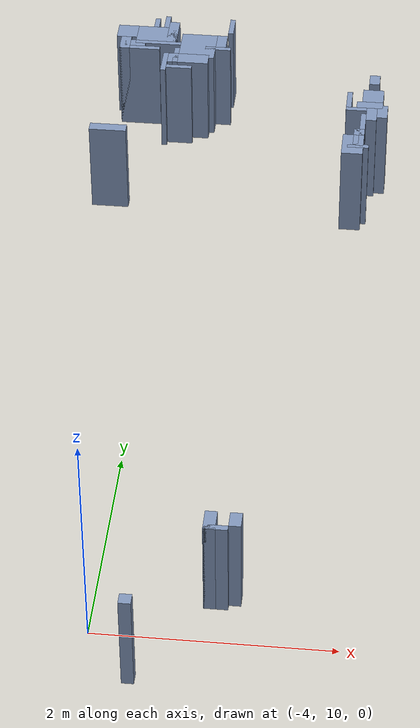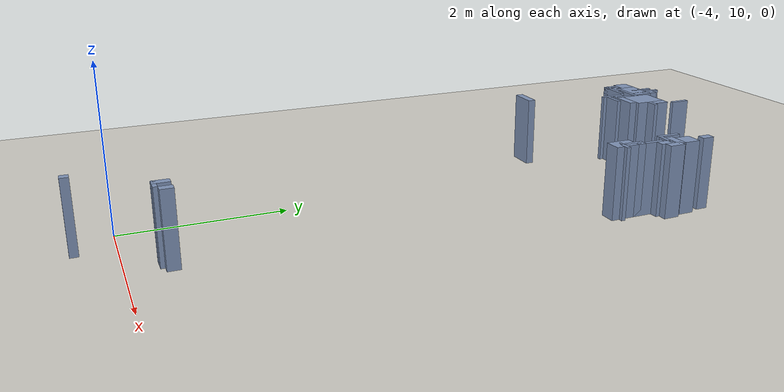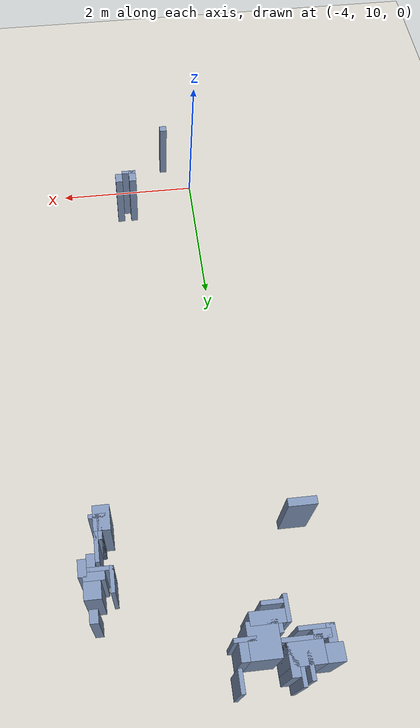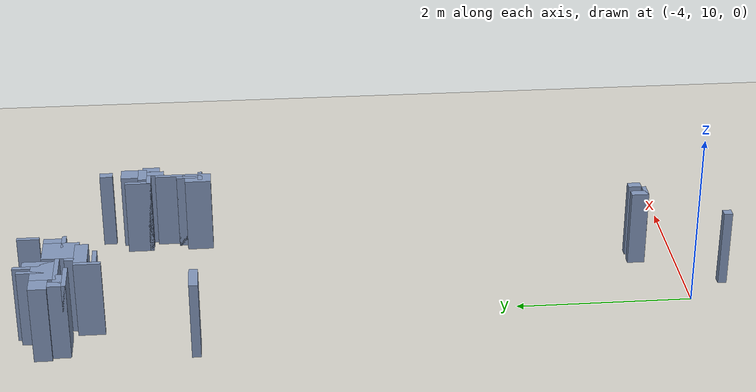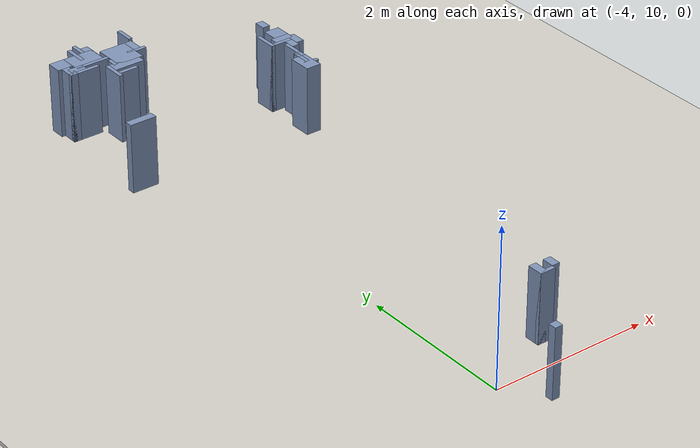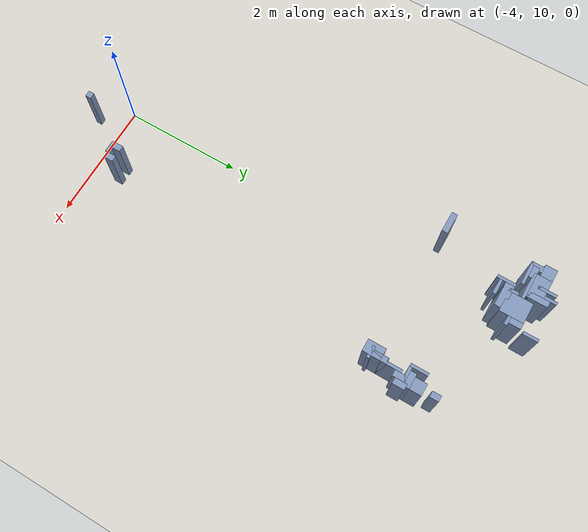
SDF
<sdf version="1.8">
 <world name="capture_fresh">
  <model name="ground_plane">
   <static>true</static>
   <link name="link">
    <collision name="collision">
     <geometry><plane><normal>0 0 1</normal><size>80 80</size></plane></geometry>
    </collision>
    <visual name="visual">
     <geometry><plane><normal>0 0 1</normal><size>80 80</size></plane></geometry>
     <material><ambient>0.40 0.40 0.42 1</ambient><diffuse>0.48 0.48 0.51 1</diffuse></material>
    </visual>
   </link>
  </model>
  <model name="floor_slab">
   <static>true</static>
   <pose>0.107 9.033 -0.025 0 0 0</pose>
   <link name="link">
    <collision name="collision"><geometry><box><size>27.650 26.350 0.050</size></box></geometry></collision>
    <visual name="visual">
     <geometry><box><size>27.650 26.350 0.050</size></box></geometry>
     <material>
      <ambient>0.68 0.67 0.64 1</ambient>
      <diffuse>0.82 0.81 0.78 1</diffuse>
      <specular>0.15 0.15 0.15 1</specular>
     </material>
    </visual>
   </link>
  </model>
  <model name="obstacle_06">
   <static>true</static>
   <pose>-4.243 17.458 0.450 0 0 0</pose>
   <link name="link">
    <collision name="collision"><geometry><box><size>0.050 0.200 0.900</size></box></geometry></collision>
    <visual name="visual">
     <geometry><box><size>0.050 0.200 0.900</size></box></geometry>
     <material>
      <ambient>0.42 0.48 0.58 1</ambient>
      <diffuse>0.50 0.58 0.72 1</diffuse>
      <specular>0.15 0.15 0.15 1</specular>
     </material>
    </visual>
   </link>
  </model>
  <model name="obstacle_07">
   <static>true</static>
   <pose>-4.618 17.258 0.450 0 0 0</pose>
   <link name="link">
    <collision name="collision"><geometry><box><size>0.200 0.200 0.900</size></box></geometry></collision>
    <visual name="visual">
     <geometry><box><size>0.200 0.200 0.900</size></box></geometry>
     <material>
      <ambient>0.42 0.48 0.58 1</ambient>
      <diffuse>0.50 0.58 0.72 1</diffuse>
      <specular>0.15 0.15 0.15 1</specular>
     </material>
    </visual>
   </link>
  </model>
  <model name="obstacle_08">
   <static>true</static>
   <pose>-3.593 17.433 0.450 0 0 0</pose>
   <link name="link">
    <collision name="collision"><geometry><box><size>0.050 0.250 0.900</size></box></geometry></collision>
    <visual name="visual">
     <geometry><box><size>0.050 0.250 0.900</size></box></geometry>
     <material>
      <ambient>0.42 0.48 0.58 1</ambient>
      <diffuse>0.50 0.58 0.72 1</diffuse>
      <specular>0.15 0.15 0.15 1</specular>
     </material>
    </visual>
   </link>
  </model>
  <model name="obstacle_09">
   <static>true</static>
   <pose>-4.318 17.233 0.450 0 0 0</pose>
   <link name="link">
    <collision name="collision"><geometry><box><size>0.400 0.250 0.900</size></box></geometry></collision>
    <visual name="visual">
     <geometry><box><size>0.400 0.250 0.900</size></box></geometry>
     <material>
      <ambient>0.42 0.48 0.58 1</ambient>
      <diffuse>0.50 0.58 0.72 1</diffuse>
      <specular>0.15 0.15 0.15 1</specular>
     </material>
    </visual>
   </link>
  </model>
  <model name="obstacle_10">
   <static>true</static>
   <pose>-4.293 17.083 0.450 0 0 0</pose>
   <link name="link">
    <collision name="collision"><geometry><box><size>0.450 0.050 0.900</size></box></geometry></collision>
    <visual name="visual">
     <geometry><box><size>0.450 0.050 0.900</size></box></geometry>
     <material>
      <ambient>0.42 0.48 0.58 1</ambient>
      <diffuse>0.50 0.58 0.72 1</diffuse>
      <specular>0.15 0.15 0.15 1</specular>
     </material>
    </visual>
   </link>
  </model>
  <model name="obstacle_13">
   <static>true</static>
   <pose>-4.168 17.283 0.450 0 0 0</pose>
   <link name="link">
    <collision name="collision"><geometry><box><size>0.100 0.350 0.900</size></box></geometry></collision>
    <visual name="visual">
     <geometry><box><size>0.100 0.350 0.900</size></box></geometry>
     <material>
      <ambient>0.42 0.48 0.58 1</ambient>
      <diffuse>0.50 0.58 0.72 1</diffuse>
      <specular>0.15 0.15 0.15 1</specular>
     </material>
    </visual>
   </link>
  </model>
  <model name="obstacle_14">
   <static>true</static>
   <pose>-3.668 17.158 0.450 0 0 0</pose>
   <link name="link">
    <collision name="collision"><geometry><box><size>0.100 0.200 0.900</size></box></geometry></collision>
    <visual name="visual">
     <geometry><box><size>0.100 0.200 0.900</size></box></geometry>
     <material>
      <ambient>0.42 0.48 0.58 1</ambient>
      <diffuse>0.50 0.58 0.72 1</diffuse>
      <specular>0.15 0.15 0.15 1</specular>
     </material>
    </visual>
   </link>
  </model>
  <model name="obstacle_15">
   <static>true</static>
   <pose>-3.693 17.033 0.450 0 0 0</pose>
   <link name="link">
    <collision name="collision"><geometry><box><size>0.250 0.050 0.900</size></box></geometry></collision>
    <visual name="visual">
     <geometry><box><size>0.250 0.050 0.900</size></box></geometry>
     <material>
      <ambient>0.42 0.48 0.58 1</ambient>
      <diffuse>0.50 0.58 0.72 1</diffuse>
      <specular>0.15 0.15 0.15 1</specular>
     </material>
    </visual>
   </link>
  </model>
  <model name="obstacle_17">
   <static>true</static>
   <pose>-4.518 17.058 0.450 0 0 0</pose>
   <link name="link">
    <collision name="collision"><geometry><box><size>0.200 0.100 0.900</size></box></geometry></collision>
    <visual name="visual">
     <geometry><box><size>0.200 0.100 0.900</size></box></geometry>
     <material>
      <ambient>0.42 0.48 0.58 1</ambient>
      <diffuse>0.50 0.58 0.72 1</diffuse>
      <specular>0.15 0.15 0.15 1</specular>
     </material>
    </visual>
   </link>
  </model>
  <model name="obstacle_18">
   <static>true</static>
   <pose>-4.343 17.358 0.450 0 0 0</pose>
   <link name="link">
    <collision name="collision"><geometry><box><size>0.050 0.300 0.900</size></box></geometry></collision>
    <visual name="visual">
     <geometry><box><size>0.050 0.300 0.900</size></box></geometry>
     <material>
      <ambient>0.42 0.48 0.58 1</ambient>
      <diffuse>0.50 0.58 0.72 1</diffuse>
      <specular>0.15 0.15 0.15 1</specular>
     </material>
    </visual>
   </link>
  </model>
  <model name="obstacle_19">
   <static>true</static>
   <pose>-4.468 16.983 0.450 0 0 0</pose>
   <link name="link">
    <collision name="collision"><geometry><box><size>0.400 0.050 0.900</size></box></geometry></collision>
    <visual name="visual">
     <geometry><box><size>0.400 0.050 0.900</size></box></geometry>
     <material>
      <ambient>0.42 0.48 0.58 1</ambient>
      <diffuse>0.50 0.58 0.72 1</diffuse>
      <specular>0.15 0.15 0.15 1</specular>
     </material>
    </visual>
   </link>
  </model>
  <model name="obstacle_20">
   <static>true</static>
   <pose>-4.618 17.058 0.450 0 0 0</pose>
   <link name="link">
    <collision name="collision"><geometry><box><size>0.100 0.200 0.900</size></box></geometry></collision>
    <visual name="visual">
     <geometry><box><size>0.100 0.200 0.900</size></box></geometry>
     <material>
      <ambient>0.42 0.48 0.58 1</ambient>
      <diffuse>0.50 0.58 0.72 1</diffuse>
      <specular>0.15 0.15 0.15 1</specular>
     </material>
    </visual>
   </link>
  </model>
  <model name="obstacle_23">
   <static>true</static>
   <pose>-3.893 17.058 0.450 0 0 0</pose>
   <link name="link">
    <collision name="collision"><geometry><box><size>0.350 0.400 0.900</size></box></geometry></collision>
    <visual name="visual">
     <geometry><box><size>0.350 0.400 0.900</size></box></geometry>
     <material>
      <ambient>0.42 0.48 0.58 1</ambient>
      <diffuse>0.50 0.58 0.72 1</diffuse>
      <specular>0.15 0.15 0.15 1</specular>
     </material>
    </visual>
   </link>
  </model>
  <model name="obstacle_27">
   <static>true</static>
   <pose>-3.968 16.833 0.450 0 0 0</pose>
   <link name="link">
    <collision name="collision"><geometry><box><size>0.400 0.150 0.900</size></box></geometry></collision>
    <visual name="visual">
     <geometry><box><size>0.400 0.150 0.900</size></box></geometry>
     <material>
      <ambient>0.42 0.48 0.58 1</ambient>
      <diffuse>0.50 0.58 0.72 1</diffuse>
      <specular>0.15 0.15 0.15 1</specular>
     </material>
    </visual>
   </link>
  </model>
  <model name="obstacle_28">
   <static>true</static>
   <pose>-4.043 16.683 0.450 0 0 0</pose>
   <link name="link">
    <collision name="collision"><geometry><box><size>0.250 0.050 0.900</size></box></geometry></collision>
    <visual name="visual">
     <geometry><box><size>0.250 0.050 0.900</size></box></geometry>
     <material>
      <ambient>0.42 0.48 0.58 1</ambient>
      <diffuse>0.50 0.58 0.72 1</diffuse>
      <specular>0.15 0.15 0.15 1</specular>
     </material>
    </visual>
   </link>
  </model>
  <model name="obstacle_30">
   <static>true</static>
   <pose>-4.093 16.883 0.450 0 0 0</pose>
   <link name="link">
    <collision name="collision"><geometry><box><size>0.050 0.250 0.900</size></box></geometry></collision>
    <visual name="visual">
     <geometry><box><size>0.050 0.250 0.900</size></box></geometry>
     <material>
      <ambient>0.42 0.48 0.58 1</ambient>
      <diffuse>0.50 0.58 0.72 1</diffuse>
      <specular>0.15 0.15 0.15 1</specular>
     </material>
    </visual>
   </link>
  </model>
  <model name="obstacle_33">
   <static>true</static>
   <pose>-2.118 16.633 0.450 0 0 0</pose>
   <link name="link">
    <collision name="collision"><geometry><box><size>0.100 0.150 0.900</size></box></geometry></collision>
    <visual name="visual">
     <geometry><box><size>0.100 0.150 0.900</size></box></geometry>
     <material>
      <ambient>0.42 0.48 0.58 1</ambient>
      <diffuse>0.50 0.58 0.72 1</diffuse>
      <specular>0.15 0.15 0.15 1</specular>
     </material>
    </visual>
   </link>
  </model>
  <model name="obstacle_41">
   <static>true</static>
   <pose>-4.193 16.758 0.450 0 0 0</pose>
   <link name="link">
    <collision name="collision"><geometry><box><size>0.050 0.300 0.900</size></box></geometry></collision>
    <visual name="visual">
     <geometry><box><size>0.050 0.300 0.900</size></box></geometry>
     <material>
      <ambient>0.42 0.48 0.58 1</ambient>
      <diffuse>0.50 0.58 0.72 1</diffuse>
      <specular>0.15 0.15 0.15 1</specular>
     </material>
    </visual>
   </link>
  </model>
  <model name="obstacle_53">
   <static>true</static>
   <pose>-2.118 16.358 0.450 0 0 0</pose>
   <link name="link">
    <collision name="collision"><geometry><box><size>0.200 0.200 0.900</size></box></geometry></collision>
    <visual name="visual">
     <geometry><box><size>0.200 0.200 0.900</size></box></geometry>
     <material>
      <ambient>0.42 0.48 0.58 1</ambient>
      <diffuse>0.50 0.58 0.72 1</diffuse>
      <specular>0.15 0.15 0.15 1</specular>
     </material>
    </visual>
   </link>
  </model>
  <model name="obstacle_54">
   <static>true</static>
   <pose>-2.143 16.208 0.450 0 0 0</pose>
   <link name="link">
    <collision name="collision"><geometry><box><size>0.250 0.100 0.900</size></box></geometry></collision>
    <visual name="visual">
     <geometry><box><size>0.250 0.100 0.900</size></box></geometry>
     <material>
      <ambient>0.42 0.48 0.58 1</ambient>
      <diffuse>0.50 0.58 0.72 1</diffuse>
      <specular>0.15 0.15 0.15 1</specular>
     </material>
    </visual>
   </link>
  </model>
  <model name="obstacle_55">
   <static>true</static>
   <pose>-2.218 16.133 0.450 0 0 0</pose>
   <link name="link">
    <collision name="collision"><geometry><box><size>0.300 0.050 0.900</size></box></geometry></collision>
    <visual name="visual">
     <geometry><box><size>0.300 0.050 0.900</size></box></geometry>
     <material>
      <ambient>0.42 0.48 0.58 1</ambient>
      <diffuse>0.50 0.58 0.72 1</diffuse>
      <specular>0.15 0.15 0.15 1</specular>
     </material>
    </visual>
   </link>
  </model>
  <model name="obstacle_56">
   <static>true</static>
   <pose>-2.018 16.108 0.450 0 0 0</pose>
   <link name="link">
    <collision name="collision"><geometry><box><size>0.100 0.200 0.900</size></box></geometry></collision>
    <visual name="visual">
     <geometry><box><size>0.100 0.200 0.900</size></box></geometry>
     <material>
      <ambient>0.42 0.48 0.58 1</ambient>
      <diffuse>0.50 0.58 0.72 1</diffuse>
      <specular>0.15 0.15 0.15 1</specular>
     </material>
    </visual>
   </link>
  </model>
  <model name="obstacle_61">
   <static>true</static>
   <pose>-2.343 16.258 0.450 0 0 0</pose>
   <link name="link">
    <collision name="collision"><geometry><box><size>0.050 0.300 0.900</size></box></geometry></collision>
    <visual name="visual">
     <geometry><box><size>0.050 0.300 0.900</size></box></geometry>
     <material>
      <ambient>0.42 0.48 0.58 1</ambient>
      <diffuse>0.50 0.58 0.72 1</diffuse>
      <specular>0.15 0.15 0.15 1</specular>
     </material>
    </visual>
   </link>
  </model>
  <model name="obstacle_64">
   <static>true</static>
   <pose>-2.118 16.058 0.450 0 0 0</pose>
   <link name="link">
    <collision name="collision"><geometry><box><size>0.100 0.200 0.900</size></box></geometry></collision>
    <visual name="visual">
     <geometry><box><size>0.100 0.200 0.900</size></box></geometry>
     <material>
      <ambient>0.42 0.48 0.58 1</ambient>
      <diffuse>0.50 0.58 0.72 1</diffuse>
      <specular>0.15 0.15 0.15 1</specular>
     </material>
    </visual>
   </link>
  </model>
  <model name="obstacle_68">
   <static>true</static>
   <pose>-2.218 15.758 0.450 0 0 0</pose>
   <link name="link">
    <collision name="collision"><geometry><box><size>0.100 0.100 0.900</size></box></geometry></collision>
    <visual name="visual">
     <geometry><box><size>0.100 0.100 0.900</size></box></geometry>
     <material>
      <ambient>0.42 0.48 0.58 1</ambient>
      <diffuse>0.50 0.58 0.72 1</diffuse>
      <specular>0.15 0.15 0.15 1</specular>
     </material>
    </visual>
   </link>
  </model>
  <model name="obstacle_75">
   <static>true</static>
   <pose>-4.593 15.608 0.450 0 0 0</pose>
   <link name="link">
    <collision name="collision"><geometry><box><size>0.350 0.100 0.900</size></box></geometry></collision>
    <visual name="visual">
     <geometry><box><size>0.350 0.100 0.900</size></box></geometry>
     <material>
      <ambient>0.42 0.48 0.58 1</ambient>
      <diffuse>0.50 0.58 0.72 1</diffuse>
      <specular>0.15 0.15 0.15 1</specular>
     </material>
    </visual>
   </link>
  </model>
  <model name="obstacle_76">
   <static>true</static>
   <pose>-2.218 15.533 0.450 0 0 0</pose>
   <link name="link">
    <collision name="collision"><geometry><box><size>0.200 0.050 0.900</size></box></geometry></collision>
    <visual name="visual">
     <geometry><box><size>0.200 0.050 0.900</size></box></geometry>
     <material>
      <ambient>0.42 0.48 0.58 1</ambient>
      <diffuse>0.50 0.58 0.72 1</diffuse>
      <specular>0.15 0.15 0.15 1</specular>
     </material>
    </visual>
   </link>
  </model>
  <model name="obstacle_77">
   <static>true</static>
   <pose>-2.193 15.883 0.450 0 0 0</pose>
   <link name="link">
    <collision name="collision"><geometry><box><size>0.050 0.350 0.900</size></box></geometry></collision>
    <visual name="visual">
     <geometry><box><size>0.050 0.350 0.900</size></box></geometry>
     <material>
      <ambient>0.42 0.48 0.58 1</ambient>
      <diffuse>0.50 0.58 0.72 1</diffuse>
      <specular>0.15 0.15 0.15 1</specular>
     </material>
    </visual>
   </link>
  </model>
  <model name="obstacle_84">
   <static>true</static>
   <pose>-2.243 15.683 0.450 0 0 0</pose>
   <link name="link">
    <collision name="collision"><geometry><box><size>0.050 0.250 0.900</size></box></geometry></collision>
    <visual name="visual">
     <geometry><box><size>0.050 0.250 0.900</size></box></geometry>
     <material>
      <ambient>0.42 0.48 0.58 1</ambient>
      <diffuse>0.50 0.58 0.72 1</diffuse>
      <specular>0.15 0.15 0.15 1</specular>
     </material>
    </visual>
   </link>
  </model>
  <model name="obstacle_86">
   <static>true</static>
   <pose>-2.268 15.558 0.450 0 0 0</pose>
   <link name="link">
    <collision name="collision"><geometry><box><size>0.200 0.300 0.900</size></box></geometry></collision>
    <visual name="visual">
     <geometry><box><size>0.200 0.300 0.900</size></box></geometry>
     <material>
      <ambient>0.42 0.48 0.58 1</ambient>
      <diffuse>0.50 0.58 0.72 1</diffuse>
      <specular>0.15 0.15 0.15 1</specular>
     </material>
    </visual>
   </link>
  </model>
  <model name="obstacle_180">
   <static>true</static>
   <pose>-3.018 10.383 0.450 0 0 0</pose>
   <link name="link">
    <collision name="collision"><geometry><box><size>0.200 0.050 0.900</size></box></geometry></collision>
    <visual name="visual">
     <geometry><box><size>0.200 0.050 0.900</size></box></geometry>
     <material>
      <ambient>0.42 0.48 0.58 1</ambient>
      <diffuse>0.50 0.58 0.72 1</diffuse>
      <specular>0.15 0.15 0.15 1</specular>
     </material>
    </visual>
   </link>
  </model>
  <model name="obstacle_181">
   <static>true</static>
   <pose>-2.868 10.483 0.450 0 0 0</pose>
   <link name="link">
    <collision name="collision"><geometry><box><size>0.100 0.150 0.900</size></box></geometry></collision>
    <visual name="visual">
     <geometry><box><size>0.100 0.150 0.900</size></box></geometry>
     <material>
      <ambient>0.42 0.48 0.58 1</ambient>
      <diffuse>0.50 0.58 0.72 1</diffuse>
      <specular>0.15 0.15 0.15 1</specular>
     </material>
    </visual>
   </link>
  </model>
  <model name="obstacle_184">
   <static>true</static>
   <pose>-3.068 10.458 0.450 0 0 0</pose>
   <link name="link">
    <collision name="collision"><geometry><box><size>0.100 0.200 0.900</size></box></geometry></collision>
    <visual name="visual">
     <geometry><box><size>0.100 0.200 0.900</size></box></geometry>
     <material>
      <ambient>0.42 0.48 0.58 1</ambient>
      <diffuse>0.50 0.58 0.72 1</diffuse>
      <specular>0.15 0.15 0.15 1</specular>
     </material>
    </visual>
   </link>
  </model>
  <model name="obstacle_187">
   <static>true</static>
   <pose>-3.618 9.558 0.450 0 0 0</pose>
   <link name="link">
    <collision name="collision"><geometry><box><size>0.100 0.100 0.900</size></box></geometry></collision>
    <visual name="visual">
     <geometry><box><size>0.100 0.100 0.900</size></box></geometry>
     <material>
      <ambient>0.42 0.48 0.58 1</ambient>
      <diffuse>0.50 0.58 0.72 1</diffuse>
      <specular>0.15 0.15 0.15 1</specular>
     </material>
    </visual>
   </link>
  </model>
 </world>
</sdf>
